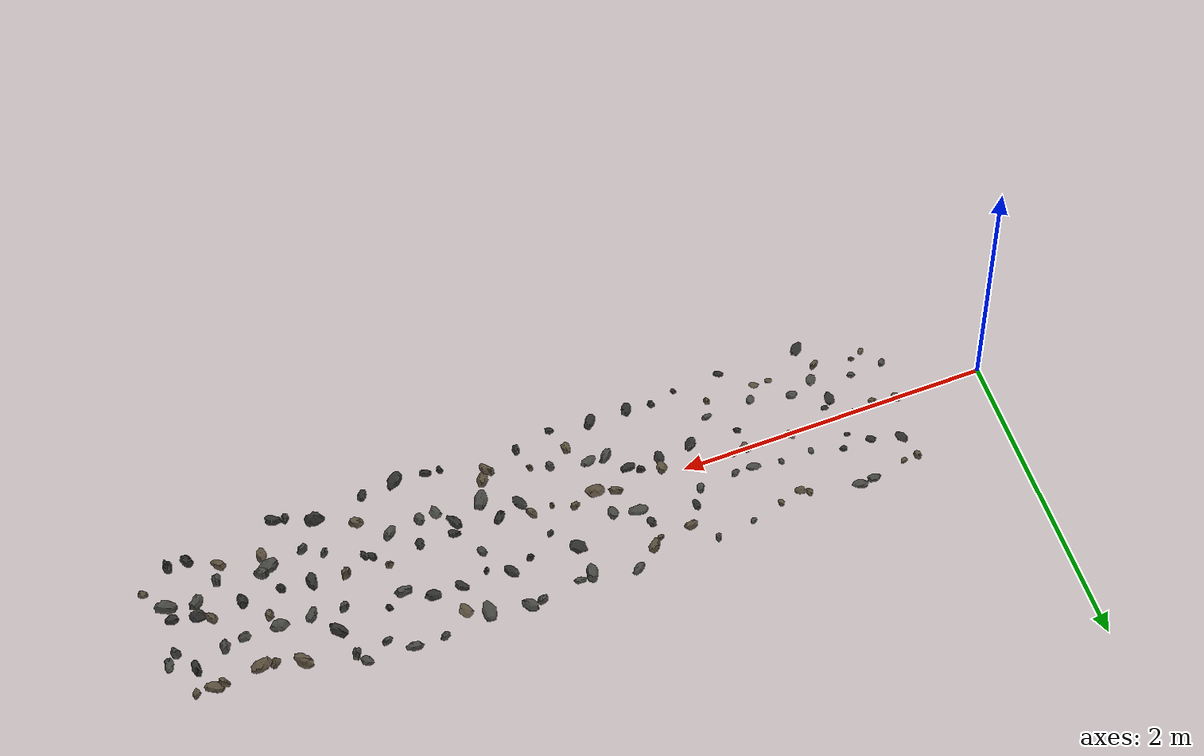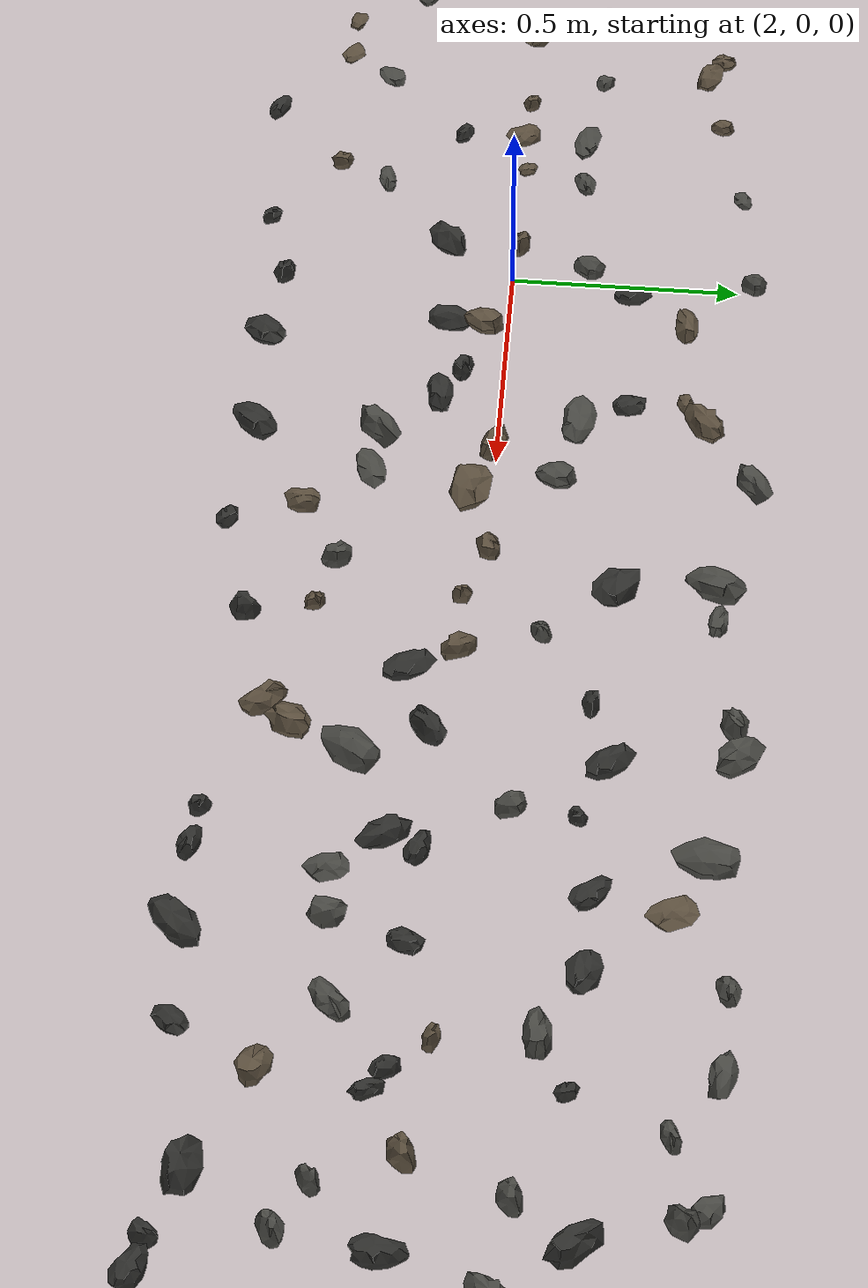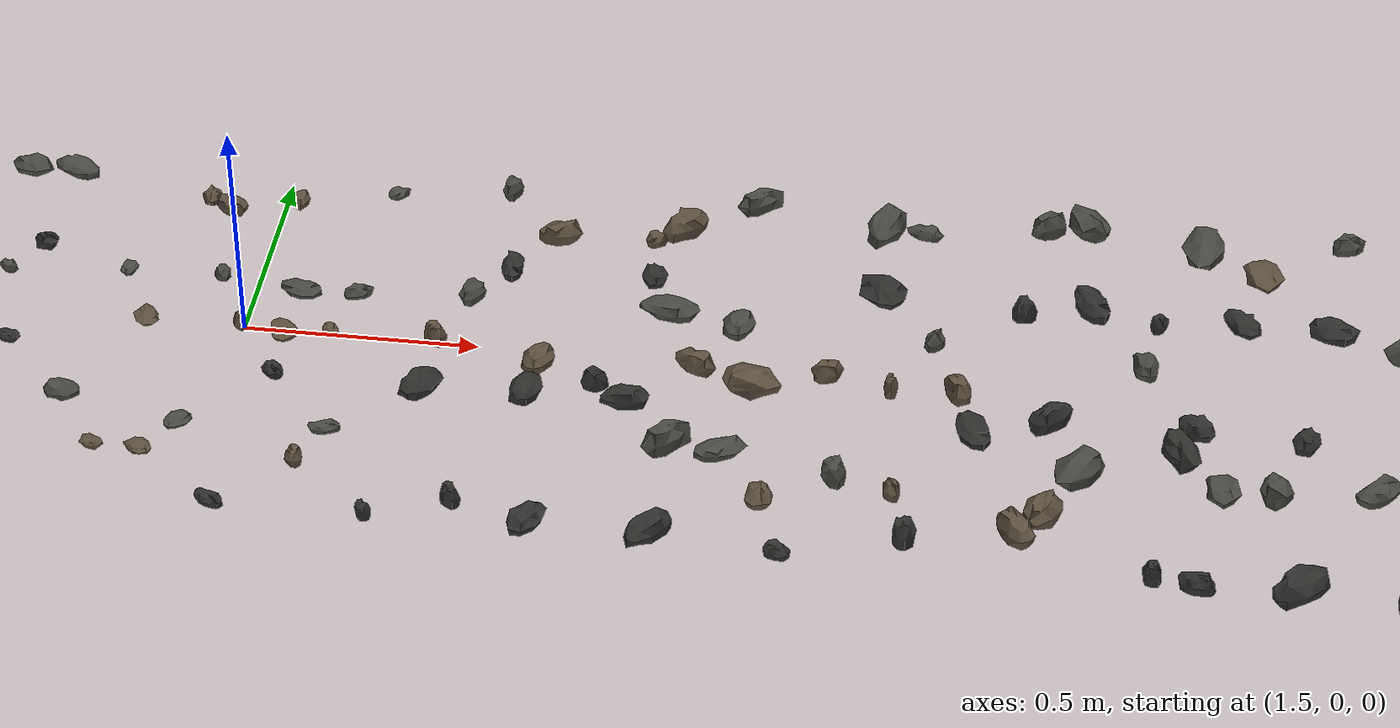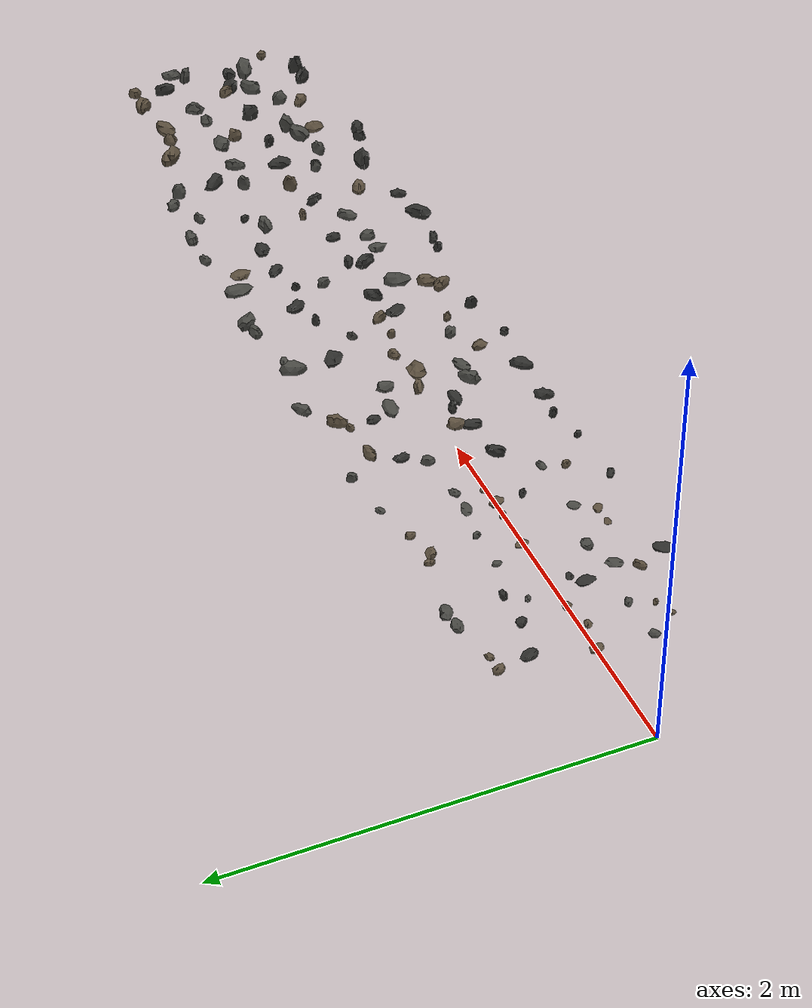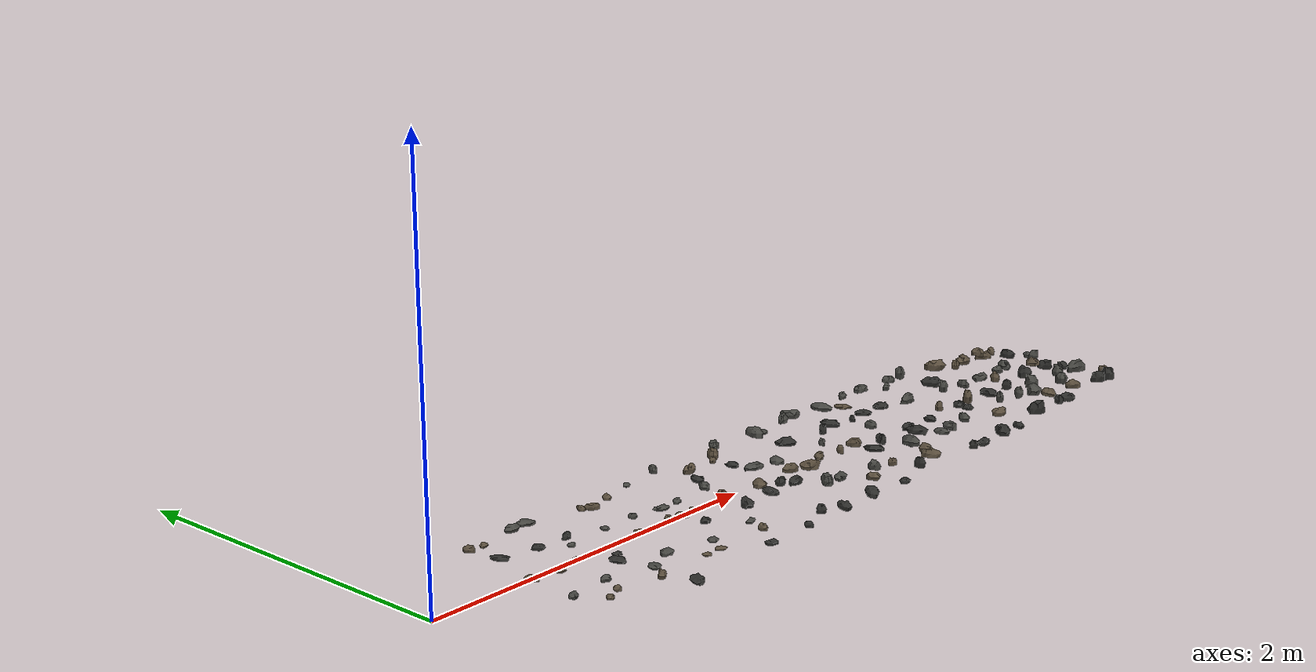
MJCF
<mujoco model="common robot scene">
  <compiler angle="radian"/>

  fixed object:

  rock:
  <include file="rock/rocky_pathway.xml"/>

  floor:

  playground:

</mujoco>
